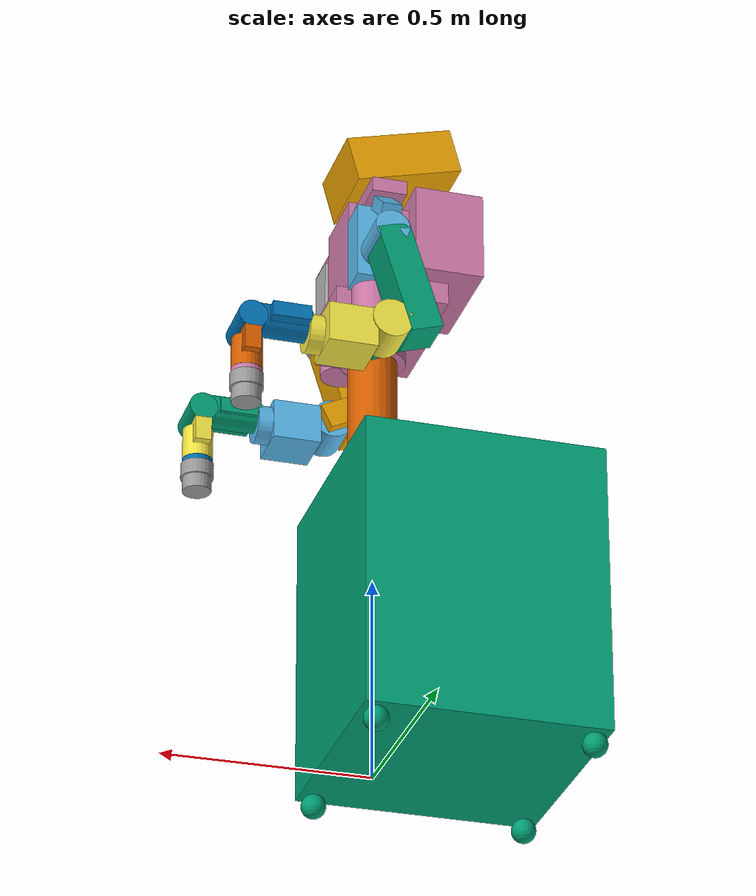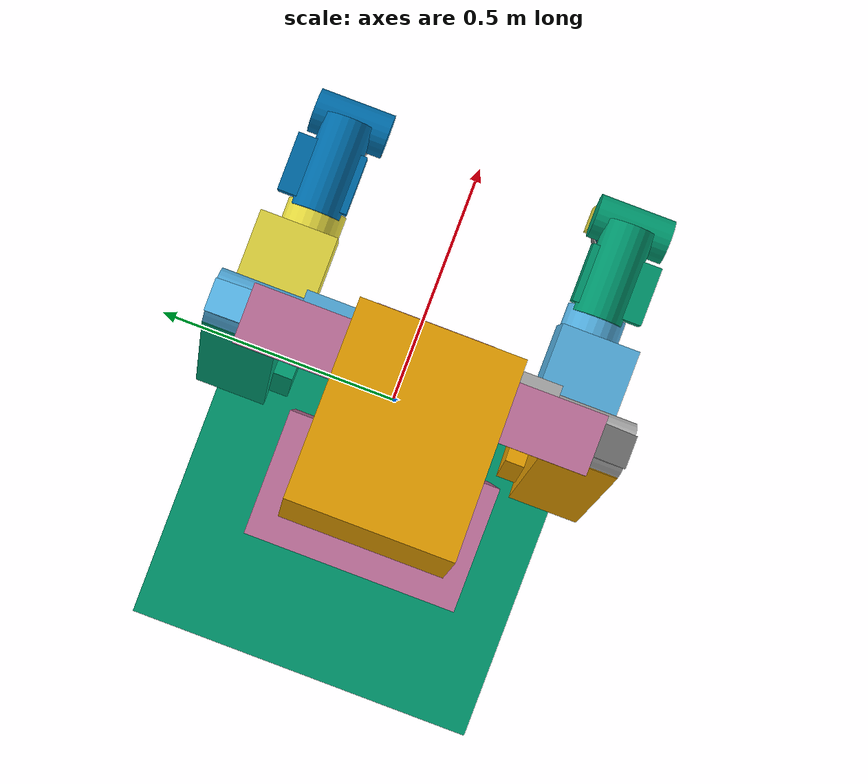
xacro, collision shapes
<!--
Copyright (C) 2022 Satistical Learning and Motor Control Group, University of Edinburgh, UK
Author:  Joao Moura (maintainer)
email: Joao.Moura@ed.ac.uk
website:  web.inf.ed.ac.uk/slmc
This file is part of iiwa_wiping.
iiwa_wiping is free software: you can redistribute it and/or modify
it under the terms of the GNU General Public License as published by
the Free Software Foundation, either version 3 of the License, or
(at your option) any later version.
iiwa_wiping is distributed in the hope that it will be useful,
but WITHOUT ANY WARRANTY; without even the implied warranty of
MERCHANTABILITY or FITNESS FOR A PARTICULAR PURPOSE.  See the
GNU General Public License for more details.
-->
<?xml version="1.0"?>
<robot name="nextage_wiping" xmlns:xacro="http://www.ros.org/wiki/xacro">

  <!-- Include files for vanilla base -->
  <xacro:include filename="$(find nextagea_description)/urdf/base/nextagea_base.xacro" />
  <xacro:include filename="$(find nextagea_description)/urdf/robot/nextagea_robot.xacro" />
  <xacro:include filename="$(find nextagea_description)/urdf/tool/nextagea_tools.xacro" />
  <xacro:include filename="$(find nextage_extensions)/urdf/ati.xacro" />
  <xacro:include filename="$(find nextage_extensions)/urdf/tool_changer.xacro" />
  <xacro:include filename="$(find nextage_extensions)/urdf/robotiq_140_gripper.xacro" />

  <link name="world"/>
  <joint name="fixed" type="fixed">
    <parent link="world"/>
    <child link="base_link"/>
    <origin xyz="0 0 0.85" rpy="0 0 0"/>
  </joint>

  <!-- Include the nextagea base, robot torso, and tools -->
  <xacro:nextagea_base/>
  <xacro:nextagea_robot namespace="nextage"/>

  <!-- F/T sensors -->
  <xacro:ati_ft_sensor parent="LARM_JOINT5_Link" prefix="LARM_" topic_name="ft_left/raw/data">
    <origin xyz="0 0 0" rpy="0 0 0"/>
  </xacro:ati_ft_sensor>

  <xacro:ati_ft_sensor parent="RARM_JOINT5_Link" prefix="RARM_" topic_name="ft_right/raw/data">
    <origin xyz="0 0 0" rpy="0 0 0"/>
  </xacro:ati_ft_sensor>

  <!-- Tool Changers -->
  <xacro:tool_changer prefix="LARM_" parent="LARM_ft_link">
    <origin xyz="0 0 0" rpy="0 0 0"/>
  </xacro:tool_changer>

  <xacro:tool_changer prefix="RARM_" parent="RARM_ft_link">
    <origin xyz="0 0 0" rpy="0 0 0"/>
  </xacro:tool_changer>

  <!-- nextage head frame -->
  <link name="CAMERA_HEAD_Link"/>
  <joint name="CAMERA_HEAD_Joint" type="fixed">
    <parent link="CAMERA_HEAD_R_Link"/>
    <child link="CAMERA_HEAD_Link"/>
    <origin xyz="0 0.0725 0" rpy="0 0 0" />
  </joint>
  <link name="CAMERA_HEAD_HEADING_Link"/>
  <joint name="CAMERA_HEAD_HEADING_Joint" type="fixed">
    <parent link="HEAD_JOINT1_Link"/>
    <child link="CAMERA_HEAD_HEADING_Link"/>
    <origin xyz="1.2 0 0" rpy="0 0 0" />
  </joint>

  <!-- teleop frame for reference-->
  <link name="teleop_ref"/>
  <joint name="teleop_ref_joint" type="fixed">
    <parent link="base_link"/>
    <child link="teleop_ref"/>
    <origin xyz="0.3 0 0" rpy="3.14159 0 0"/>
  </joint>

  <!-- gaze reference -->
  <link name="gaze_ref"/>
  <joint name="gaze_ref_joint" type="fixed">
    <parent link="RARM_changer_link"/>
    <child link="gaze_ref"/>
    <origin xyz="0.25 0 0" rpy="0 0 0"/>
  </joint>

  <!-- friction cone reference -->

</robot>

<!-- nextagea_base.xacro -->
<robot xmlns:xacro="http://ros.org/wiki/xacro">

  <xacro:include filename="$(find nextagea_description)/urdf/general/common.xacro" />

  <xacro:macro name="nextagea_base">
    <!-- Work-around for KDL base-link inertia problem; also adheres to ROS standard-->
    <link name="base_link"/>
    <joint name="base_to_dummy" type="fixed">
      <parent link="base_link"/>
      <child link="nextage_base"/>
    </joint>

    <link name="nextage_base">
      <visual>
        <origin xyz="0 0 0" rpy="0 0 0"/>
        <geometry>
          <mesh filename="package://nextagea_description/urdf/meshes/BASE_Link_mesh.dae"/>
        </geometry>
      </visual>
      <collision>
        <origin xyz="-0.19 0 -0.435" rpy="0 0 0"/>
        <geometry>
          <box size="0.585 0.585 0.72"/>
        </geometry>
      </collision>
      <collision>
        <origin xyz="0.0675 0.2575 -0.82" rpy="0 0 0"/>
        <geometry>
          <sphere radius="0.03"/>
        </geometry>
      </collision>
      <collision>
        <origin xyz="0.0675 -0.2575 -0.82" rpy="0 0 0"/>
        <geometry>
          <sphere radius="0.03"/>
        </geometry>
      </collision>
      <collision>
        <origin xyz="-0.4475 0.2575 -0.82" rpy="0 0 0"/>
        <geometry>
          <sphere radius="0.03"/>
        </geometry>
      </collision>
      <collision>
        <origin xyz="-0.4475 -0.2575 -0.82" rpy="0 0 0"/>
        <geometry>
          <sphere radius="0.03"/>
        </geometry>
      </collision>
      <inertial>
        <mass value="40" />
        <origin xyz="-0.19 0 -0.435" rpy="0 0 0"/>
        <xacro:nxa_box_inertia_def x="0.585" y="0.585" z="0.72" mass="40"/>
      </inertial>
    </link>
    <joint name="base_to_waist" type="fixed">
      <parent link="nextage_base"/>
      <child link="WAIST"/>
    </joint>

  </xacro:macro>

</robot>

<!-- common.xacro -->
<robot xmlns:xacro="http://ros.org/wiki/xacro">

    <xacro:property name="nextagea_common_guard" default="true"/>
    <xacro:if value="${nextagea_common_guard}">
        <xacro:property name="nextagea_common_guard" value="false"/>

        <!-- Inertia macros -->
        <xacro:macro name="nxa_sphere_inertia_def" params="radius mass">
            <inertia ixx="${2/5*mass*radius*radius}" ixy="0" ixz="0" iyy="${2/5*mass*radius*radius}" iyz="0" izz="${2/5*mass*radius*radius}"/>
        </xacro:macro>
        <xacro:macro name="nxa_box_inertia_def" params="x y z mass">
            <inertia iyy="${mass*(z*z+x*x)/12.0}" ixx="${mass*(y*y+z*z)/12.0}" izz="${mass*(x*x+y*y)/12.0}" ixy="0.0" iyz="0.0" ixz="0.0"/>
        </xacro:macro>
        <xacro:macro name="nxa_cylinder_inertia_def" params="r h mass">
            <inertia ixx="${mass*(3*r*r+h*h)/12}" ixy="0" ixz="0" iyy="${mass*(3*r*r+h*h)/12}" iyz="0" izz="${mass*r*r/2}"/>
        </xacro:macro>

        <xacro:macro name="transmission_nx_joint" params="name">
            <transmission name="${name}_Trans">
                <type>transmission_interface/SimpleTransmission</type>
                <joint name="${name}">
                    <hardwareInterface>hardware_interface/PositionJointInterface</hardwareInterface>
                </joint>
                <actuator name="${name}_Motor">
                    <mechanicalReduction>1</mechanicalReduction>
                </actuator>
            </transmission>
        </xacro:macro>

        <!-- Define contact properties -->
        <xacro:macro name="gazebo_nx_link" params="name color">
            <gazebo reference="gazebo_${name}">
                <material>Gazebo/${color}</material>
                <mu1 value="1.0" />
                <mu2 value="1.0" />
                <kp  value="1e5" />
                <kd  value="1e2" />
                <maxVel  value="100.0" />
                <minDepth  value="0.0" />
                <dampingFactor>0.01</dampingFactor>
            </gazebo>
        </xacro:macro>

        <!-- Camera gazebo plugin -->
        <!-- Properties -->
        <xacro:property name="M_PI" value="3.1415926535897931" />
        <xacro:property name="jnt_head_camera_displacement_x" value="0.0175" />
        <xacro:property name="jnt_head_camera_displacement_y" value="0.0725" />
        <xacro:property name="jnt_head_camera_displacement_z" value="0.105" />
        <xacro:property name="jnt_head_camera_rot_y" value="0.25" />
        <xacro:property name="link_head_camera_rot_z" value="0.05" />
        <xacro:property name="jnt_hand_camera_displacement_x" value="0.0525" />
        <xacro:property name="jnt_hand_camera_displacement_y" value="0.0525" />
        <xacro:property name="jnt_hand_camera_displacement_z" value="0.0" />
        <xacro:property name="jnt_hand_camera_rot_y" value="1.5708" />
        <xacro:property name="link_hand_camera_rot_z" value="0.0" />

        <xacro:macro name="camera_joint_link_gzplugin"
        params="camera_name link_parent jnt_displacement_x jnt_displacement_y jnt_displacement_z jnt_rotation_x jnt_rotation_y jnt_rotation_z link_displacement_x link_displacement_y link_displacement_z link_rotation_x link_rotation_y link_rotation_z">
            <joint name="${camera_name}" type="fixed">
            <origin
                xyz="${jnt_displacement_x} ${jnt_displacement_y} ${jnt_displacement_z}"
                rpy="${jnt_rotation_x} ${jnt_rotation_y} ${jnt_rotation_z}" />
            <parent link="${link_parent}" />
            <child link="${camera_name}_Link" />
            </joint>
            <link name="${camera_name}_Link">
            <visual>
                <origin
                xyz="${link_displacement_x} ${link_displacement_y} ${link_displacement_z}"
                rpy="${link_rotation_x} ${link_rotation_y} ${link_rotation_z}" />
                <geometry>
                <cylinder length="0.01" radius="0.015" />
                </geometry>
                <material name="Blue" />
            </visual>
            <inertial>
                <origin xyz="0 0 0" rpy="0 0 0" />
                <mass value="1e-6" />
                <inertia ixx="1e-12" ixy="0.0" ixz="0.0" iyy="1e-12" iyz="0.0"
                izz="1e-12" />
            </inertial>
            </link>
            <gazebo reference="${camera_name}_Link">
                <sensor type="camera" name="${camera_name}">
                    <update_rate>30.0</update_rate>
                    <camera name="${camera_name}">
                    <horizontal_fov>1.3962634</horizontal_fov>
                    <image>
                        <width>800</width>
                        <height>800</height>
                        <format>R8G8B8</format>
                    </image>
                    <clip>
                        <near>0.1</near>
                        <far>30</far>
                    </clip>
                    <noise>
                        <type>gaussian</type>
                        <mean>0.0</mean>
                        <stddev>0.007</stddev>
                    </noise>
                    </camera>
                    <plugin name="camera_controller" filename="libgazebo_ros_camera.so">
                    <alwaysOn>true</alwaysOn>
                    <updateRate>0.0</updateRate>
                    <cameraName>${camera_name}</cameraName>
                    <imageTopicName>image_raw</imageTopicName>
                    <cameraInfoTopicName>camera_info</cameraInfoTopicName>
                    <frameName>${camera_name}_Link_frame</frameName>
                    <hackBaseline>0.07</hackBaseline>
                    <distortionK1>0.0</distortionK1>
                    <distortionK2>0.0</distortionK2>
                    <distortionK3>0.0</distortionK3>
                    <distortionT1>0.0</distortionT1>
                    <distortionT2>0.0</distortionT2>
                    </plugin>
                </sensor>
            </gazebo>
        </xacro:macro>

    </xacro:if>

    <xacro:macro name="sphere_inertia_def" params="radius mass">
        <inertia ixx="${2/5*mass*radius*radius}" ixy="0" ixz="0" iyy="${2/5*mass*radius*radius}" iyz="0" izz="${2/5*mass*radius*radius}"/>
    </xacro:macro>

</robot>

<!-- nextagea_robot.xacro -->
<robot xmlns:xacro="http://ros.org/wiki/xacro">

  <xacro:include filename="$(find nextagea_description)/urdf/general/common.xacro" />
  <xacro:include filename="$(find nextagea_description)/urdf/general/materials.xacro" />

  <xacro:macro name="nextagea_robot" params="namespace:=/nextagea/ nextagea_gazebo_ros_control:=true">

    <!-- NOTE: The poses of headmount and hand cameras are NOT precisely adjusted to
    the 3D model nor the actual hardware config. These configs
    are meant for a rapid prototyping only. -->

    <xacro:camera_joint_link_gzplugin
        camera_name="CAMERA_HEAD_L" link_parent="HEAD_JOINT1_Link"
        jnt_displacement_x="${jnt_head_camera_displacement_x}" jnt_displacement_y="${jnt_head_camera_displacement_y}" jnt_displacement_z="${jnt_head_camera_displacement_z}"
        jnt_rotation_x="0" jnt_rotation_y="${jnt_head_camera_rot_y}" jnt_rotation_z="0"
        link_displacement_x="0.0325" link_displacement_y="0" link_displacement_z="0"
        link_rotation_x="0" link_rotation_y="${M_PI/2}" link_rotation_z="-${link_head_camera_rot_z}" />

    <xacro:camera_joint_link_gzplugin
        camera_name="CAMERA_HEAD_R" link_parent="HEAD_JOINT1_Link"
        jnt_displacement_x="${jnt_head_camera_displacement_x}" jnt_displacement_y="-${jnt_head_camera_displacement_y}" jnt_displacement_z="${jnt_head_camera_displacement_z}"
        jnt_rotation_x="0" jnt_rotation_y="${jnt_head_camera_rot_y}" jnt_rotation_z="0"
        link_displacement_x="0.0325" link_displacement_y="0" link_displacement_z="0"
        link_rotation_x="0" link_rotation_y="${M_PI/2}" link_rotation_z="${link_head_camera_rot_z}" />

    <xacro:gazebo_nx_link name="WAIST" color="Black" />
    <link name="WAIST">
      <visual>
        <origin xyz="0 0 0" rpy="0 0 0"/>
        <geometry>
          <mesh filename="package://nextagea_description/urdf/meshes/WAIST_Link_mesh.dae"/>
        </geometry>
      </visual>
      <collision>
        <origin xyz="0.0 0 0.098" rpy="0 0 0"/>
        <geometry>
          <cylinder length="0.376" radius="0.06"/>
        </geometry>
      </collision>
      <inertial>
        <mass value="5" />
        <origin xyz="0 0 0.15" rpy="0 0 0"/>
        <xacro:nxa_box_inertia_def x="0.2" y="0.2" z="0.3" mass="5"/>
      </inertial>
    </link>

    <xacro:gazebo_nx_link name="CHEST_JOINT0_Link" color="Black" />
    <link name="CHEST_JOINT0_Link">
      <visual>
        <origin xyz="0 0 0" rpy="0 0 0"/>
        <geometry>
          <mesh filename="package://nextagea_description/urdf/meshes/CHEST_JOINT0_Link_mesh.dae"/>
        </geometry>
      </visual>
      <collision>
        <origin xyz="0 0 0.1575" rpy="0 0 0"/>
        <geometry>
          <cylinder length="0.385" radius="0.08"/>
        </geometry>
      </collision>
      <collision>
        <origin xyz="0.04 0.135 0.0423" rpy="0 0 0"/>
        <geometry>
          <cylinder length="0.09" radius="0.05"/>
        </geometry>
      </collision>
      <collision>
        <origin xyz="0.04 -0.135 0.0423" rpy="0 0 0"/>
        <geometry>
          <cylinder length="0.09" radius="0.05"/>
        </geometry>
      </collision>
      <collision>
        <origin xyz="0 0 0.055" rpy="0 0 0"/>
        <geometry>
          <box size="0.23 0.18 0.12"/>
        </geometry>
      </collision>
      <collision>
        <origin xyz="-0.04 0 0.2325" rpy="0 0 0"/>
        <geometry>
          <box size="0.25 0.18 0.245"/>
        </geometry>
      </collision>
      <collision>
        <origin xyz="-0.1525 0 0.279" rpy="0 0 0"/>
        <geometry>
          <box size="0.17 0.29 0.225"/>
        </geometry>
      </collision>
      <collision>
        <origin xyz="0.03 0 0.315" rpy="0 0 0"/>
        <geometry>
          <box size="0.085 0.5 0.0365"/>
        </geometry>
      </collision>
      <inertial>
        <mass value="10.0" />
        <origin xyz="0 0 0.2" rpy="0 -0 0"/>
        <xacro:nxa_box_inertia_def x="0.25" y="0.25" z="0.3" mass="10"/>
      </inertial>
    </link>

    <xacro:gazebo_nx_link name="HEAD_JOINT0_Link" color="Black" />
    <link name="HEAD_JOINT0_Link">
      <visual>
        <origin xyz="0 0 0" rpy="0 0 0"/>
        <geometry>
          <mesh filename="package://nextagea_description/urdf/meshes/HEAD_JOINT0_Link_mesh.dae"/>
        </geometry>
      </visual>
      <collision>
        <origin xyz="0 0.01 0.08" rpy="1.57079 0 0"/>
        <geometry>
          <cylinder length="0.135" radius="0.035"/>
        </geometry>
      </collision>
      <inertial>
        <mass value="0.317929" />
        <origin xyz="0 0.00547848 0" rpy="0 -0 0"/>
        <xacro:nxa_box_inertia_def x="0.1" y="0.1" z="0.1" mass="0.317929"/>
      </inertial>
    </link>

    <xacro:gazebo_nx_link name="HEAD_JOINT1_Link" color="Black" />
    <link name="HEAD_JOINT1_Link">
      <visual>
        <origin xyz="0 0 0" rpy="0 0 0"/>
        <geometry>
          <mesh filename="package://nextagea_description/urdf/meshes/HEAD_JOINT1_Link_mesh.dae"/>
        </geometry>
      </visual>
      <collision>
        <origin xyz="-0.05 0 0.12" rpy="0 0.26 0"/>
        <geometry>
          <box size="0.27 0.22 0.115"/>
        </geometry>
      </collision>
      <inertial>
        <mass value="0.4" />
        <origin xyz="-0.05 0 0.12" rpy="0 0.26 0"/>
        <xacro:nxa_box_inertia_def x="0.27" y="0.22" z="0.115" mass="0.4"/>
      </inertial>
    </link>

    <xacro:gazebo_nx_link name="LARM_JOINT0_Link" color="Black" />
    <link name="LARM_JOINT0_Link">
      <visual>
        <origin xyz="0 0 0" rpy="0 0 0"/>
        <geometry>
          <mesh filename="package://nextagea_description/urdf/meshes/LARM_JOINT0_Link_mesh.dae"/>
        </geometry>
      </visual>
      <collision>
        <origin xyz="0 0.00775 0.095" rpy="0 0 0"/>
        <geometry>
          <box size="0.1 0.0815 0.19"/>
        </geometry>
      </collision>
      <collision>
        <origin xyz="0 0.0875 0.066" rpy="1.57079 0 0"/>
        <geometry>
          <cylinder length="0.175" radius="0.042"/>
        </geometry>
      </collision>
      <collision>
        <origin xyz="0 0.125 0.145" rpy="-0.7 0 0"/>
        <geometry>
          <box size="0.048 0.1 0.035"/>
        </geometry>
      </collision>
      <inertial>
        <mass value="1.32626" />
        <origin xyz="0.0 0.05 0.05" rpy="0 -0 0"/>
        <inertia ixx="0.00207537" ixy="0.00011276" ixz="8.927e-05" iyy="0.00240295" iyz="-4.57e-05" izz="0.00141912"/>
      </inertial>
    </link>

    <xacro:gazebo_nx_link name="LARM_JOINT1_Link" color="Black" />
    <link name="LARM_JOINT1_Link">
      <visual>
        <origin xyz="0 0 0" rpy="0 0 0"/>
        <geometry>
          <mesh filename="package://nextagea_description/urdf/meshes/LARM_JOINT1_Link_mesh.dae"/>
        </geometry>
      </visual>
      <collision>
        <origin xyz="-0.043 0.12 -0.13" rpy="0 0.3 0"/>
        <geometry>
          <box size="0.08 0.11 0.28"/>
        </geometry>
      </collision>
      <collision>
        <origin xyz="-0.03 0.0518 -0.236" rpy="0 0.45 0"/>
        <geometry>
          <box size="0.122 0.0338 0.062"/>
        </geometry>
      </collision>
      <inertial>
        <mass value="1.14898" />
        <origin xyz="-0.04 0.1 -0.12" rpy="0 -0 0"/>
        <inertia ixx="0.0154168" ixy="9.95417e-07" ixz="3.38147e-06" iyy="0.0147117" iyz="0.00213719" izz="0.0012658"/>
      </inertial>
    </link>

    <xacro:gazebo_nx_link name="LARM_JOINT2_Link" color="Black" />
    <link name="LARM_JOINT2_Link">
      <visual>
        <origin xyz="0 0 0" rpy="0 0 0"/>
        <geometry>
          <mesh filename="package://nextagea_description/urdf/meshes/LARM_JOINT2_Link_mesh.dae"/>
        </geometry>
      </visual>
      <collision>
        <origin xyz="0 0.025 0" rpy="1.57079 0 0"/>
        <geometry>
          <cylinder length="0.11" radius="0.049"/>
        </geometry>
      </collision>
      <collision>
        <origin xyz="0.0945 0.015 -0.03" rpy="0 0 0"/>
        <geometry>
          <box size="0.119 0.125 0.1"/>
        </geometry>
      </collision>
      <collision>
        <origin xyz="0.17 0 -0.03" rpy="0 1.57079 0"/>
        <geometry>
          <cylinder length="0.04" radius="0.047"/>
        </geometry>
      </collision>
      <inertial>
        <mass value="0.577518" />
        <origin xyz="0.1 0.01167107 -0.04" rpy="0 -0 0"/>
        <inertia ixx="0.00143966" ixy="-3e-07" ixz="1.2e-06" iyy="0.00141763" iyz="-7.596e-05" izz="0.0001972"/>
      </inertial>
    </link>

    <xacro:gazebo_nx_link name="LARM_JOINT3_Link" color="Black" />
    <link name="LARM_JOINT3_Link">
      <visual>
        <origin xyz="0 0 0" rpy="0 0 0"/>
        <geometry>
          <mesh filename="package://nextagea_description/urdf/meshes/LARM_JOINT3_Link_mesh.dae"/>
        </geometry>
      </visual>
      <collision>
        <origin xyz="0.1495 -0.003 0" rpy="1.57079 0 0"/>
        <geometry>
          <cylinder length="0.12" radius="0.035"/>
        </geometry>
      </collision>
      <collision>
        <origin xyz="0.075 0.0 0.018" rpy="0 1.57079 0"/>
        <geometry>
          <cylinder length="0.15" radius="0.04"/>
        </geometry>
      </collision>
      <collision>
        <origin xyz="0.0585 0.01 0.0185" rpy="0 0 0"/>
        <geometry>
          <box size="0.093 0.112 0.037"/>
        </geometry>
      </collision>
      <inertial>
        <mass value="0.457418" />
        <origin xyz="0.1 -0.00395812 -0.00273" rpy="0 -0 0"/>
        <inertia ixx="0.00069205" ixy="3e-08" ixz="5.2e-07" iyy="0.00068903" iyz="-1.915e-05" izz="0.00013509"/>
      </inertial>
    </link>

    <xacro:gazebo_nx_link name="LARM_JOINT4_Link" color="Black" />
    <link name="LARM_JOINT4_Link">
      <visual>
        <origin xyz="0 0 0" rpy="0 0 0"/>
        <geometry>
          <mesh filename="package://nextagea_description/urdf/meshes/LARM_JOINT4_Link_mesh.dae"/>
        </geometry>
      </visual>
      <collision>
        <origin xyz="0 -0.002 -0.06" rpy="0 0 0"/>
        <geometry>
          <box size="0.04 0.118 0.06"/>
        </geometry>
      </collision>
      <collision>
        <origin xyz="0 0 -0.08" rpy="0 0 0"/>
        <geometry>
          <cylinder length="0.08" radius="0.037"/>
        </geometry>
      </collision>
      <inertial>
        <mass value="0.418434" />
        <origin xyz="0.00243131 0.00379733 -0.0577036" rpy="0 -0 0"/>
        <inertia ixx="0.00052016" ixy="1.69e-06" ixz="7.9e-06" iyy="0.00050569" iyz="-5.377e-05" izz="0.00014004"/>
      </inertial>
    </link>

    <xacro:gazebo_nx_link name="LARM_JOINT5_Link" color="Black" />
    <link name="LARM_JOINT5_Link">
      <visual>
        <origin xyz="0 0 0" rpy="0 0 0"/>
        <geometry>
          <mesh filename="package://nextagea_description/urdf/meshes/LARM_JOINT5_Link_mesh.dae"/>
        </geometry>
      </visual>
      <collision>
        <origin xyz="0 0 0.0065" rpy="0 0 0"/>
        <geometry>
          <cylinder length="0.013" radius="0.037"/>
        </geometry>
      </collision>
      <inertial>
        <mass value="1.05156" />
        <origin xyz="0.0 0.0 -0.08" rpy="0 -0 0"/>
        <inertia ixx="0.00194072" ixy="1.1e-07" ixz="-0.00042482" iyy="0.00209392" iyz="1.2e-07" izz="0.00035788"/>
      </inertial>
    </link>

    <xacro:gazebo_nx_link name="RARM_JOINT0_Link" color="Black" />
    <link name="RARM_JOINT0_Link">
      <visual>
        <origin xyz="0 0 0" rpy="0 0 0"/>
        <geometry>
          <mesh filename="package://nextagea_description/urdf/meshes/RARM_JOINT0_Link_mesh.dae"/>
        </geometry>
      </visual>
      <collision>
        <origin xyz="0 -0.00775 0.095" rpy="0 0 0"/>
        <geometry>
          <box size="0.1 0.0815 0.19"/>
        </geometry>
      </collision>
      <collision>
        <origin xyz="0 -0.0875 0.066" rpy="1.57079 0 0"/>
        <geometry>
          <cylinder length="0.175" radius="0.042"/>
        </geometry>
      </collision>
      <collision>
        <origin xyz="0 -0.125 0.145" rpy="0.7 0 0"/>
        <geometry>
          <box size="0.048 0.1 0.035"/>
        </geometry>
      </collision>
      <inertial>
        <mass value="1.32626" />
        <origin xyz="0.0 -0.05 0.05" rpy="0 -0 0"/>
        <inertia ixx="0.00207537" ixy="-0.00011276" ixz="8.927e-05" iyy="0.00240295" iyz="4.57e-05" izz="0.00141912"/>
      </inertial>
    </link>

    <xacro:gazebo_nx_link name="RARM_JOINT1_Link" color="Black" />
    <link name="RARM_JOINT1_Link">
      <visual>
        <origin xyz="0 0 0" rpy="0 0 0"/>
        <geometry>
          <mesh filename="package://nextagea_description/urdf/meshes/RARM_JOINT1_Link_mesh.dae"/>
        </geometry>
      </visual>
      <collision>
        <origin xyz="-0.043 -0.12 -0.13" rpy="0 0.3 0"/>
        <geometry>
          <box size="0.08 0.11 0.28"/>
        </geometry>
      </collision>
      <collision>
        <origin xyz="-0.03 -0.0518 -0.236" rpy="0 0.45 0"/>
        <geometry>
          <box size="0.122 0.0338 0.062"/>
        </geometry>
      </collision>
      <inertial>
        <mass value="1.14898" />
        <origin xyz="-0.04 -0.1 -0.12" rpy="0 -0 0"/>
        <inertia ixx="0.0154168" ixy="-9.95417e-07" ixz="3.38147e-06" iyy="0.0147117" iyz="-0.00213719" izz="0.0012658"/>
      </inertial>
    </link>

    <xacro:gazebo_nx_link name="RARM_JOINT2_Link" color="Black" />
    <link name="RARM_JOINT2_Link">
      <visual>
        <origin xyz="0 0 0" rpy="0 0 0"/>
        <geometry>
          <mesh filename="package://nextagea_description/urdf/meshes/RARM_JOINT2_Link_mesh.dae"/>
        </geometry>
      </visual>
      <collision>
        <origin xyz="0 -0.025 0" rpy="1.57079 0 0"/>
        <geometry>
          <cylinder length="0.11" radius="0.049"/>
        </geometry>
      </collision>
      <collision>
        <origin xyz="0.0945 -0.015 -0.03" rpy="0 0 0"/>
        <geometry>
          <box size="0.119 0.125 0.1"/>
        </geometry>
      </collision>
      <collision>
        <origin xyz="0.17 0 -0.03" rpy="0 1.57079 0"/>
        <geometry>
          <cylinder length="0.04" radius="0.047"/>
        </geometry>
      </collision>
      <inertial>
        <mass value="0.577518" />
        <origin xyz="0.1 -0.01167107 -0.04" rpy="0 -0 0"/>
        <inertia ixx="0.00143966" ixy="3e-07" ixz="1.2e-06" iyy="0.00141763" iyz="7.596e-05" izz="0.0001972"/>
      </inertial>
    </link>

    <xacro:gazebo_nx_link name="RARM_JOINT3_Link" color="Black" />
    <link name="RARM_JOINT3_Link">
      <visual>
        <origin xyz="0 0 0" rpy="0 0 0"/>
        <geometry>
          <mesh filename="package://nextagea_description/urdf/meshes/RARM_JOINT3_Link_mesh.dae"/>
        </geometry>
      </visual>
      <collision>
        <origin xyz="0.1495 -0.003 0" rpy="1.57079 0 0"/>
        <geometry>
          <cylinder length="0.12" radius="0.035"/>
        </geometry>
      </collision>
      <collision>
        <origin xyz="0.075 0.0 0.018" rpy="0 1.57079 0"/>
        <geometry>
          <cylinder length="0.15" radius="0.04"/>
        </geometry>
      </collision>
      <collision>
        <origin xyz="0.0585 -0.01 0.0185" rpy="0 0 0"/>
        <geometry>
          <box size="0.093 0.112 0.037"/>
        </geometry>
      </collision>
      <inertial>
        <mass value="0.457418" />
        <origin xyz="0.1 0.00395812 -0.00273" rpy="0 -0 0"/>
        <inertia ixx="0.00069205" ixy="-3e-08" ixz="5.2e-07" iyy="0.00068903" iyz="1.915e-05" izz="0.00013509"/>
      </inertial>
    </link>

    <xacro:gazebo_nx_link name="RARM_JOINT4_Link" color="Black" />
    <link name="RARM_JOINT4_Link">
      <visual>
        <origin xyz="0 0 0" rpy="0 0 0"/>
        <geometry>
          <mesh filename="package://nextagea_description/urdf/meshes/RARM_JOINT4_Link_mesh.dae"/>
        </geometry>
      </visual>
      <collision>
        <origin xyz="0 -0.002 -0.06" rpy="0 0 0"/>
        <geometry>
          <box size="0.04 0.118 0.06"/>
        </geometry>
      </collision>
      <collision>
        <origin xyz="0 0 -0.08" rpy="0 0 0"/>
        <geometry>
          <cylinder length="0.08" radius="0.037"/>
        </geometry>
      </collision>
      <inertial>
        <mass value="0.418434" />
        <origin xyz="0.00243131 -0.00379733 -0.0577036" rpy="0 -0 0"/>
        <inertia ixx="0.00052016" ixy="-1.69e-06" ixz="7.9e-06" iyy="0.00050569" iyz="5.377e-05" izz="0.00014004"/>
      </inertial>
    </link>

    <xacro:gazebo_nx_link name="RARM_JOINT5_Link" color="Black" />
    <link name="RARM_JOINT5_Link">
      <visual>
        <origin xyz="0 0 0" rpy="0 0 0"/>
        <geometry>
          <mesh filename="package://nextagea_description/urdf/meshes/RARM_JOINT5_Link_mesh.dae"/>
        </geometry>
      </visual>
      <collision>
        <origin xyz="0 0 0.0065" rpy="0 0 0"/>
        <geometry>
          <cylinder length="0.013" radius="0.037"/>
        </geometry>
      </collision>
      <inertial>
        <mass value="1.05156" />
        <origin xyz="0.0 0.0 -0.08" rpy="0 -0 0"/>
        <inertia ixx="0.00194072" ixy="-1.1e-07" ixz="-0.00042482" iyy="0.00209392" iyz="-1.2e-07" izz="0.00035788"/>
      </inertial>
    </link>

    <xacro:transmission_nx_joint name="CHEST_JOINT0" />
    <joint name="CHEST_JOINT0" type="revolute">
      <parent link="WAIST"/>
      <child link="CHEST_JOINT0_Link"/>
      <origin xyz="0 0 0.267" rpy="0 0 0"/>
      <axis xyz="0 0 1"/>
      <limit lower="-3.14159" upper="3.14159" effort="100" velocity="2.513274"/>
      <dynamics damping="0.2" friction="0"/>
    </joint>

    <xacro:transmission_nx_joint name="HEAD_JOINT0" />
    <joint name="HEAD_JOINT0" type="revolute">
      <parent link="CHEST_JOINT0_Link"/>
      <child link="HEAD_JOINT0_Link"/>
      <origin xyz="0 0 0.302" rpy="0 0 0"/>
      <axis xyz="0 0 1"/>
      <limit lower="-1.22173" upper="1.22173" effort="100" velocity="6.684611"/>
    </joint>

    <xacro:transmission_nx_joint name="HEAD_JOINT1" />
    <joint name="HEAD_JOINT1" type="revolute">
      <parent link="HEAD_JOINT0_Link"/>
      <child link="HEAD_JOINT1_Link"/>
      <origin xyz="0 0 0.08" rpy="0 0 0"/>
      <axis xyz="0 1 0"/>
      <limit lower="-0.401425" upper="1.308997" effort="100" velocity="6.684611"/>
    </joint>

    <xacro:transmission_nx_joint name="LARM_JOINT0" />
    <joint name="LARM_JOINT0" type="revolute">
      <parent link="CHEST_JOINT0_Link"/>
      <child link="LARM_JOINT0_Link"/>
      <origin xyz="0.04 0.135 0.1015" rpy="0 0 0"/>
      <axis xyz="0 0 1"/>
      <limit lower="-1.5707963" upper="1.5707963" effort="150" velocity="3.892084"/>
      <dynamics damping="0.5" friction="0.5"/>
    </joint>

    <xacro:transmission_nx_joint name="LARM_JOINT1" />
    <joint name="LARM_JOINT1" type="revolute">
      <parent link="LARM_JOINT0_Link"/>
      <child link="LARM_JOINT1_Link"/>
      <origin xyz="0 0 0.066" rpy="0 0 0"/>
      <axis xyz="0 1 0"/>
      <limit lower="-2.44346" upper="1.0471975" effort="150" velocity="2.426008"/>
      <dynamics damping="0.5" friction="0.5"/>
    </joint>

    <xacro:transmission_nx_joint name="LARM_JOINT2" />
    <joint name="LARM_JOINT2" type="revolute">
      <parent link="LARM_JOINT1_Link"/>
      <child link="LARM_JOINT2_Link"/>
      <origin xyz="0 0.095 -0.25" rpy="0 0 0"/>
      <axis xyz="0 1 0"/>
      <limit lower="-1.22173" upper="1.5707963" effort="150" velocity="3.630285"/>
      <dynamics damping="0.5" friction="0.5"/>
    </joint>

    <xacro:transmission_nx_joint name="LARM_JOINT3" />
    <joint name="LARM_JOINT3" type="revolute">
      <parent link="LARM_JOINT2_Link"/>
      <child link="LARM_JOINT3_Link"/>
      <origin xyz="0.1805 0 -0.03" rpy="0 0 0"/>
      <axis xyz="1 0 0"/>
      <limit lower="-3.1415926" upper="1.7453292" effort="150" velocity="6.352998"/>
      <dynamics damping="0.5" friction="0.5"/>
    </joint>

    <xacro:transmission_nx_joint name="LARM_JOINT4" />
    <joint name="LARM_JOINT4" type="revolute">
      <parent link="LARM_JOINT3_Link"/>
      <child link="LARM_JOINT4_Link"/>
      <origin xyz="0.1495 0 0" rpy="0 0 0"/>
      <axis xyz="0 1 0"/>
      <limit lower="-3.4" upper="1.134464" effort="150" velocity="6.352998"/>
      <dynamics damping="0.5" friction="0.5"/>
    </joint>

    <xacro:transmission_nx_joint name="LARM_JOINT5" />
    <joint name="LARM_JOINT5" type="revolute">
      <parent link="LARM_JOINT4_Link"/>
      <child link="LARM_JOINT5_Link"/>
      <origin xyz="0 0 -0.1335" rpy="0 0 0"/>
      <axis xyz="0 0 1"/>
      <limit lower="-2.7123889" upper="2.7123889" effort="150" velocity="6.352998"/>
      <dynamics damping="0.5" friction="0.5"/>
    </joint>

    <xacro:transmission_nx_joint name="RARM_JOINT0" />
    <joint name="RARM_JOINT0" type="revolute">
      <parent link="CHEST_JOINT0_Link"/>
      <child link="RARM_JOINT0_Link"/>
      <origin xyz="0.04 -0.135 0.1015" rpy="0 0 0"/>
      <axis xyz="0 0 1"/>
      <limit lower="-1.570796" upper="1.570796" effort="150" velocity="3.892084"/>
      <dynamics damping="0.5" friction="0.5"/>
    </joint>

    <xacro:transmission_nx_joint name="RARM_JOINT1" />
    <joint name="RARM_JOINT1" type="revolute">
      <parent link="RARM_JOINT0_Link"/>
      <child link="RARM_JOINT1_Link"/>
      <origin xyz="0 0 0.066" rpy="0 0 0"/>
      <axis xyz="0 1 0"/>
      <limit lower="-2.44346" upper="1.047197" effort="150" velocity="2.426008"/>
      <dynamics damping="0.5" friction="0.5"/>
    </joint>

    <xacro:transmission_nx_joint name="RARM_JOINT2" />
    <joint name="RARM_JOINT2" type="revolute">
      <parent link="RARM_JOINT1_Link"/>
      <child link="RARM_JOINT2_Link"/>
      <origin xyz="0 -0.095 -0.25" rpy="0 0 0"/>
      <axis xyz="0 1 0"/>
      <limit lower="-1.22173" upper="1.570796" effort="150" velocity="3.630285"/>
      <dynamics damping="0.5" friction="0.5"/>
    </joint>

    <xacro:transmission_nx_joint name="RARM_JOINT3" />
    <joint name="RARM_JOINT3" type="revolute">
      <parent link="RARM_JOINT2_Link"/>
      <child link="RARM_JOINT3_Link"/>
      <origin xyz="0.1805 0 -0.03" rpy="0 0 0"/>
      <axis xyz="1 0 0"/>
      <limit lower="-1.74532" upper="3.141592" effort="150" velocity="6.352998"/>
      <dynamics damping="0.5" friction="0.5"/>
    </joint>

    <xacro:transmission_nx_joint name="RARM_JOINT4" />
    <joint name="RARM_JOINT4" type="revolute">
      <parent link="RARM_JOINT3_Link"/>
      <child link="RARM_JOINT4_Link"/>
      <origin xyz="0.1495 0 0" rpy="0 0 0"/>
      <axis xyz="0 1 0"/>
      <limit lower="-3.4" upper="1.134464" effort="150" velocity="6.352998"/>
      <dynamics damping="0.5" friction="0.5"/>
    </joint>

    <xacro:transmission_nx_joint name="RARM_JOINT5" />
    <joint name="RARM_JOINT5" type="revolute">
      <parent link="RARM_JOINT4_Link"/>
      <child link="RARM_JOINT5_Link"/>
      <origin xyz="0 0 -0.1335" rpy="0 0 0"/>
      <axis xyz="0 0 1"/>
      <limit lower="-2.712388" upper="2.712388" effort="150" velocity="6.352998"/>
      <dynamics damping="0.5" friction="0.5"/>
    </joint>

    <!-- Gazebo plugin for ROS Control -->
    <xacro:if value="${nextagea_gazebo_ros_control}">
      <gazebo>
        <plugin name="gazebo_ros_control" filename="libgazebo_ros_control.so">
          <robotNamespace>${namespace}</robotNamespace>
          <eStopTopic>nextagea_hw/soft_estop</eStopTopic>
        </plugin>
      </gazebo>
    </xacro:if>

    <!-- Gazebo-Specific Link Properties -->
    <gazebo reference="CHEST_JOINT0">
      <implicitSpringDamper>1</implicitSpringDamper>
    </gazebo>
    <gazebo reference="HEAD_JOINT0">
      <implicitSpringDamper>1</implicitSpringDamper>
    </gazebo>
    <gazebo reference="HEAD_JOINT1">
      <implicitSpringDamper>1</implicitSpringDamper>
    </gazebo>
    <gazebo reference="LARM_JOINT0">
      <implicitSpringDamper>1</implicitSpringDamper>
    </gazebo>
    <gazebo reference="LARM_JOINT1">
      <implicitSpringDamper>1</implicitSpringDamper>
    </gazebo>
    <gazebo reference="LARM_JOINT2">
      <implicitSpringDamper>1</implicitSpringDamper>
    </gazebo>
    <gazebo reference="LARM_JOINT3">
      <implicitSpringDamper>1</implicitSpringDamper>
    </gazebo>
    <gazebo reference="LARM_JOINT4">
      <implicitSpringDamper>1</implicitSpringDamper>
    </gazebo>
    <gazebo reference="LARM_JOINT5">
      <implicitSpringDamper>1</implicitSpringDamper>
    </gazebo>
    <gazebo reference="RARM_JOINT0">
      <implicitSpringDamper>1</implicitSpringDamper>
    </gazebo>
    <gazebo reference="RARM_JOINT1">
      <implicitSpringDamper>1</implicitSpringDamper>
    </gazebo>
    <gazebo reference="RARM_JOINT2">
      <implicitSpringDamper>1</implicitSpringDamper>
    </gazebo>
    <gazebo reference="RARM_JOINT3">
      <implicitSpringDamper>1</implicitSpringDamper>
    </gazebo>
    <gazebo reference="RARM_JOINT4">
      <implicitSpringDamper>1</implicitSpringDamper>
    </gazebo>
    <gazebo reference="RARM_JOINT5">
      <implicitSpringDamper>1</implicitSpringDamper>
    </gazebo>

  </xacro:macro>

</robot>

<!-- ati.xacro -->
<robot name="ati_ft_sensor" xmlns:xacro="http://ros.org/wiki/xacro">

    <xacro:macro name="cylinder_inertia_def" params="r h mass">
        <inertia ixx="${mass*(3*r*r+h*h)/12}" ixy="0" ixz="0" iyy="${mass*(3*r*r+h*h)/12}" iyz="0" izz="${mass*r*r/2}"/>
    </xacro:macro>

    <xacro:macro name="sphere_inertia_def" params="radius mass">
        <inertia ixx="${2/5*mass*radius*radius}" ixy="0" ixz="0" iyy="${2/5*mass*radius*radius}" iyz="0" izz="${2/5*mass*radius*radius}"/>
    </xacro:macro>

    <xacro:property name="alpha" value="${radians(30)}"/>

    <!-- Define the ATI sensor -->
    <xacro:macro name="ati_ft_sensor" params="prefix parent *origin topic_name">

        <link name="${prefix}ft_link_base">
            <visual>
                <origin xyz="${0.0377*(cos(alpha)-sin(alpha))} ${0.0377*(cos(alpha)+sin(alpha))} -0.0333" rpy="0 0 ${alpha+radians(180)}"/>
                <geometry>
                  <mesh filename="package://nextage_extensions/urdf/meshes/ati-net-gamma.stl" scale="0.001 0.001 0.001"/>
                </geometry>
                <material name="LightGrey">
                <color rgba="0.6 0.6 0.6 1.0"/>
                </material>
            </visual>
            <collision>
                <origin xyz="0 0 -0.0185" rpy="0 0 0"/>
                <geometry>
                    <cylinder length="0.037" radius="0.04"/>
                </geometry>
            </collision>
            <inertial>
                <mass value="0.255" />
                <origin xyz="0 0 -0.01665" rpy="0 0 0"/>
                <xacro:cylinder_inertia_def r="0.0377" h="0.0333" mass="0.255"/>
            </inertial>
        </link>

        <link name="${prefix}ft_Sensor_Link">
            <inertial>
                <mass value="0.0001" />
                <origin xyz="0 0 0" rpy="0 0 0"/>
                <xacro:sphere_inertia_def radius="0.0001" mass="0.0001"/>
            </inertial>
        </link>

        <link name="${prefix}ft_link">
            <inertial>
                <mass value="0.0001" />
                <origin xyz="0 0 0" rpy="0 0 0"/>
                <xacro:sphere_inertia_def radius="0.0001" mass="0.0001"/>
            </inertial>
        </link>

        <joint name="${prefix}ft_joint" type="fixed">
            <parent link="${parent}"/>
            <child link="${prefix}ft_link_base"/>
            <xacro:insert_block name="origin"/>
            <axis xyz="0 0 1"/>
        </joint>

        <joint name="${prefix}ft_sensor_joint" type="fixed">
            <parent link="${prefix}ft_link_base"/>
            <child link="${prefix}ft_Sensor_Link"/>
            <origin xyz="0 0 -0.0333" rpy="${radians(180)} 0 0"/>
            <axis xyz="0 0 1"/>
        </joint>

        <joint name="${prefix}ft_sensor_offset_joint" type="fixed">
            <parent link="${prefix}ft_Sensor_Link"/>
            <child link="${prefix}ft_link"/>
            <origin xyz="0 0 0" rpy="0 0 0"/>
            <axis xyz="0 0 1"/>
        </joint>

        <gazebo reference="${prefix}ft_sensor_joint">
            <disableFixedJointLumping>true</disableFixedJointLumping>
            <sensor name="${prefix}ft_sensor" type="force_torque">
                <force_torque>
                <frame>parent</frame>
                <measure_direction>child_to_parent</measure_direction>
                </force_torque>
            </sensor>
        </gazebo>
        <gazebo>
            <plugin name="${prefix}ft_sensor" filename="libgazebo_ros_ft_sensor.so">
                <updateRate>500.0</updateRate>
                <topicName>${topic_name}</topicName>
                <jointName>${prefix}ft_sensor_joint</jointName>
            </plugin>
        </gazebo>

    </xacro:macro>

</robot>

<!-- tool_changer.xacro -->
<robot name="tool_changer" xmlns:xacro="http://ros.org/wiki/xacro">

    <xacro:macro name="hexe_cylinder_inertia_def" params="r h mass">
        <inertia ixx="${mass*(3*r*r+h*h)/12}" ixy="0" ixz="0" iyy="${mass*(3*r*r+h*h)/12}" iyz="0" izz="${mass*r*r/2}"/>
    </xacro:macro>

    <xacro:macro name="hexe_sphere_inertia_def" params="radius mass">
        <inertia ixx="${2/5*mass*radius*radius}" ixy="0" ixz="0" iyy="${2/5*mass*radius*radius}" iyz="0" izz="${2/5*mass*radius*radius}"/>
    </xacro:macro>

    <!-- Define the tool changer -->
    <xacro:macro name="tool_changer" params="prefix parent *origin">

        <link name="${prefix}changer_link_base">
            <visual>
              <origin xyz="0.002 0 0.011" rpy="0 0 ${radians(-90)}"/>
                <geometry>
                  <mesh filename="package://nextage_extensions/urdf/meshes/tool_changer.stl" scale="0.001 0.001 0.001"/>
                </geometry>
                <material name="LightGrey">
                <color rgba="0.6 0.6 0.6 1.0"/>
                </material>
            </visual>
            <collision>
                <origin xyz="0 0 0.0195" rpy="0 0 0"/>
                <geometry>
                    <cylinder length="0.039" radius="0.03505"/>
                </geometry>
            </collision>
            <inertial>
                <mass value="0.200" />
                <origin xyz="0 0 0.0195" rpy="0 0 0"/>
                <xacro:hexe_cylinder_inertia_def r="0.03505" h="0.039" mass="0.200"/>
            </inertial>
        </link>

        <link name="${prefix}changer_link">
            <inertial>
                <mass value="0.0001" />
                <origin xyz="0 0 0" rpy="0 0 0"/>
                <xacro:hexe_sphere_inertia_def radius="0.0001" mass="0.0001"/>
            </inertial>
        </link>

        <joint name="${prefix}changer_robot_side_joint" type="fixed">
            <parent link="${parent}"/>
            <child link="${prefix}changer_link_base"/>
            <xacro:insert_block name="origin"/>
            <axis xyz="0 0 1"/>
        </joint>

        <joint name="${prefix}changer_tool_side_joint" type="fixed">
            <parent link="${prefix}changer_link_base"/>
            <child link="${prefix}changer_link"/>
            <origin xyz="0 0 0.039" rpy="0 0 0"/>
            <axis xyz="0 0 1"/>
        </joint>

    </xacro:macro>

</robot>
